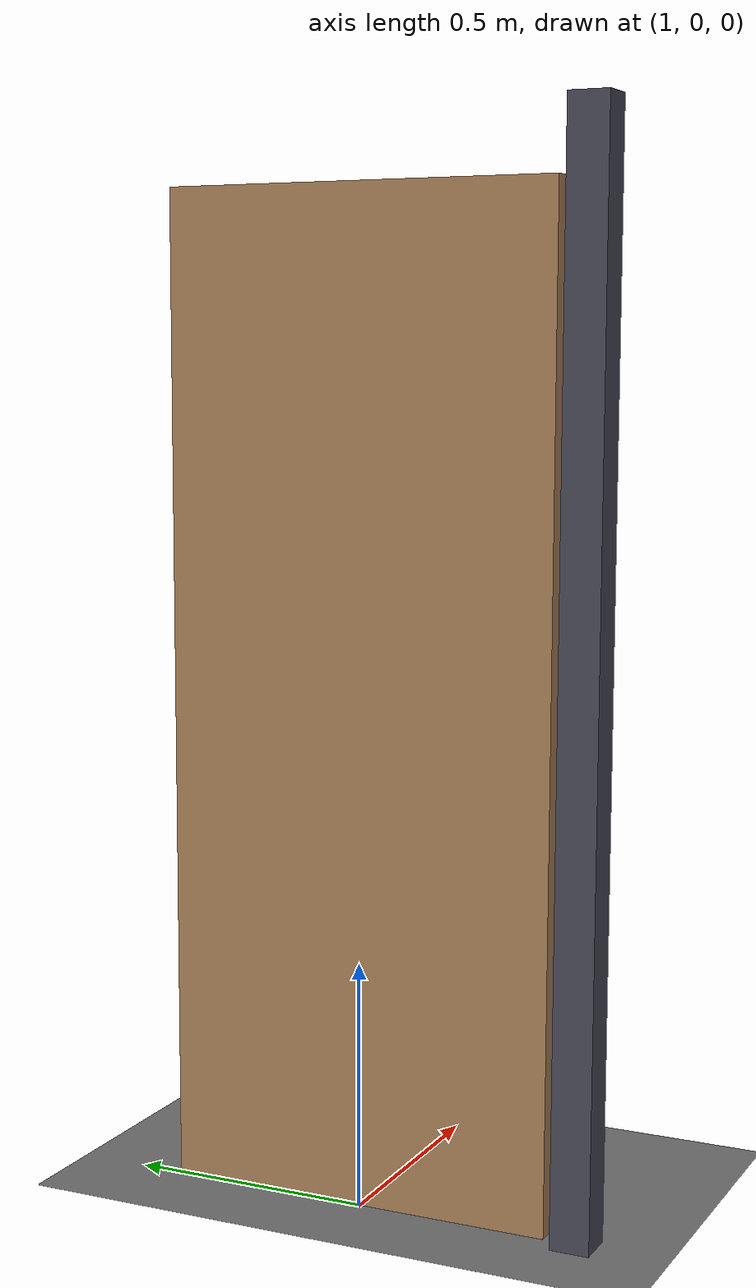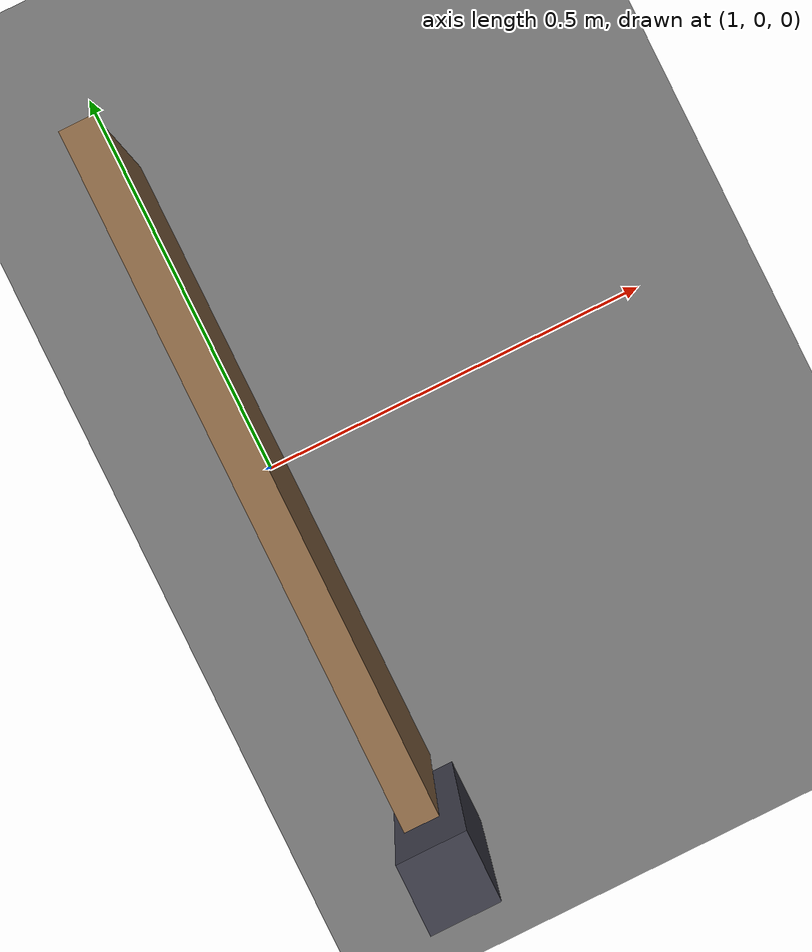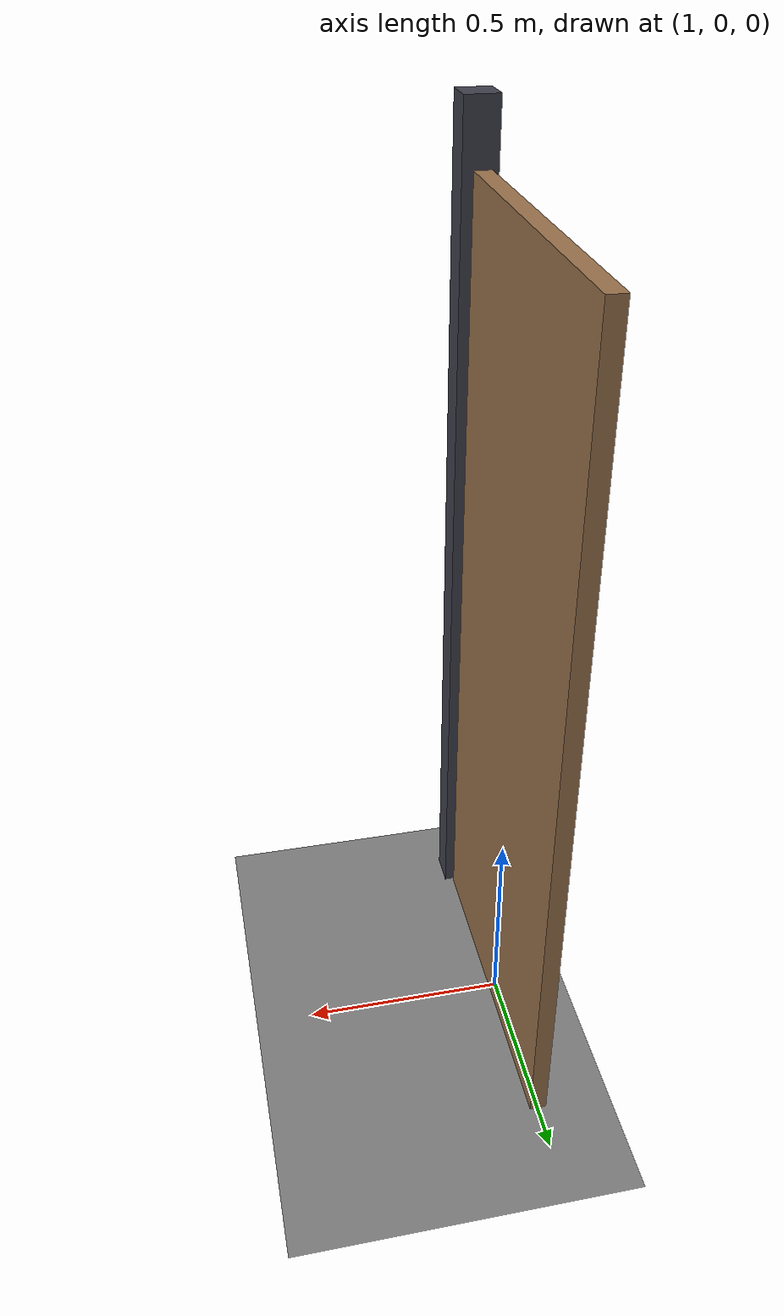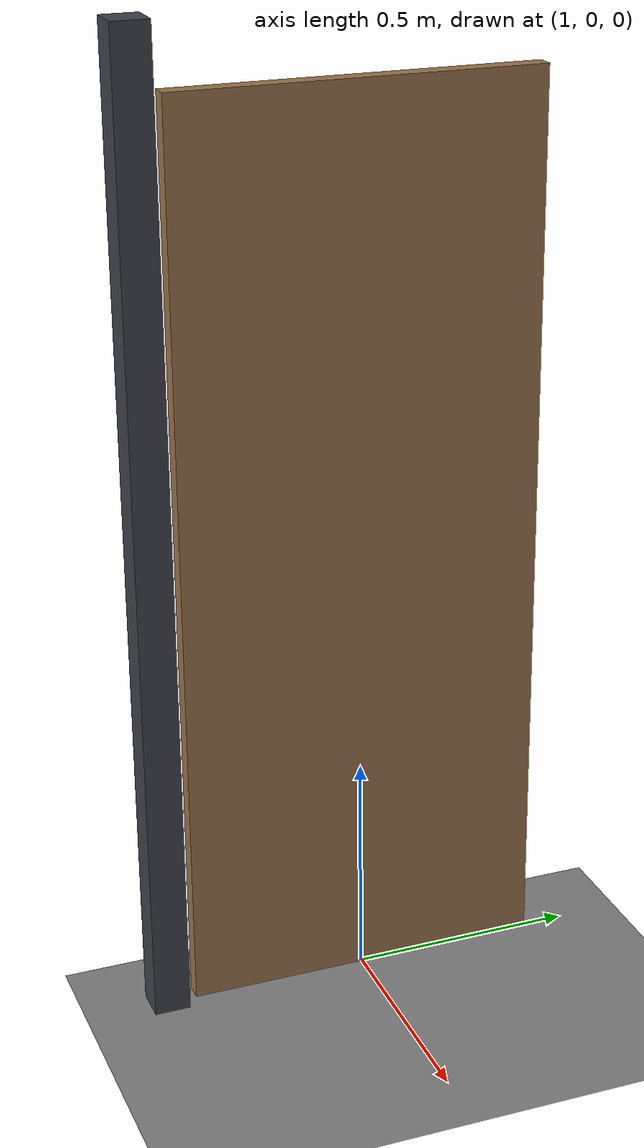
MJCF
<mujoco model="a_door_swings_shut_and_stays_shut">
  <compiler angle="radian"/>
  <option timestep="0.002"/>
  <worldbody>
    <geom name="floor" type="plane" size="8 8 0.1" friction="0.8 0.005 0.002"/>
    <body name="jamb">
      <geom name="jamb" type="box" pos="1 -0.46 1.075" size="0.04 0.04 1.075" contype="0" conaffinity="0" rgba="0.25 0.25 0.3 1"/>
    </body>
    <body name="door" pos="1 -0.4 1.01">
      <joint name="hinge" type="hinge" pos="0 0 0" axis="0 0 1" limited="true" range="0 1.91986" stiffness="20" springref="-0.0872665" damping="12"/>
      <geom name="door" type="box" pos="0 0.4 2.22045e-16" size="0.02 0.4 1" mass="20" rgba="0.6 0.45 0.3 1"/>
    </body>
  </worldbody>
  <keyframe>
    <key name="start" qpos="1.39626" qvel="0"/>
  </keyframe>
</mujoco>
